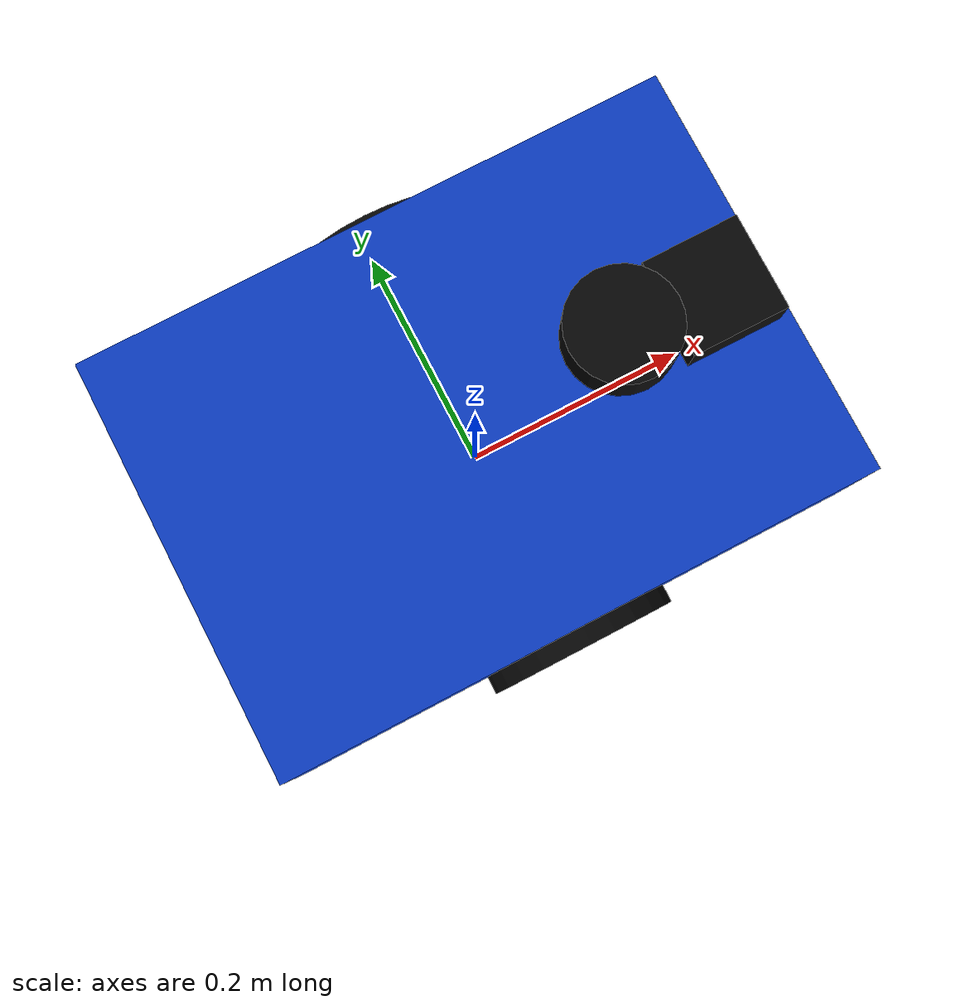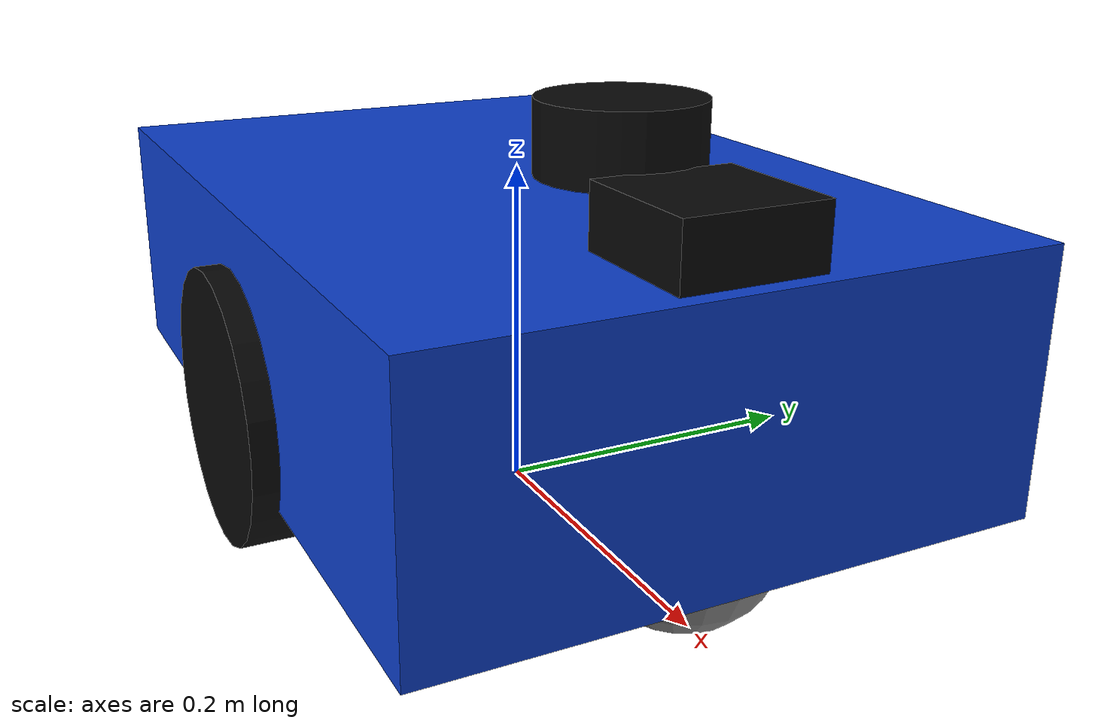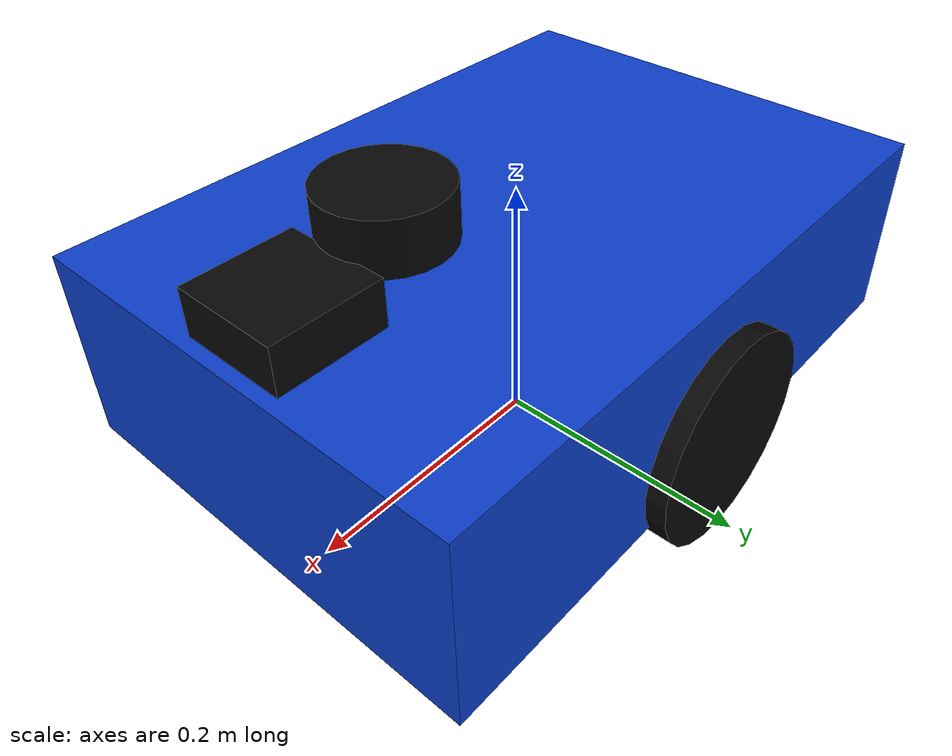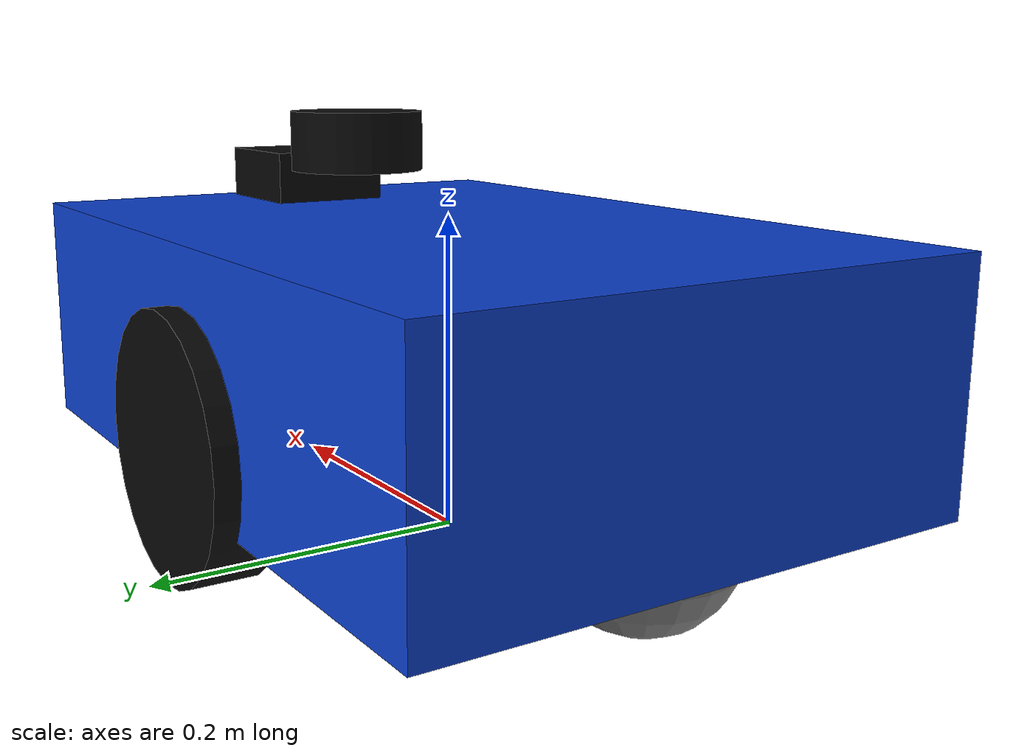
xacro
<?xml version="1.0"?>
<robot xmlns:xacro="http://www.ros.org/wiki/xacro" name="mobile_robot">

  <material name="blue"><color rgba="0.05 0.25 0.8 1.0"/></material>
  <material name="black"><color rgba="0.03 0.03 0.03 1.0"/></material>
  <material name="gray"><color rgba="0.45 0.45 0.45 1.0"/></material>

  <xacro:property name="body_length" value="0.50"/>
  <xacro:property name="body_width" value="0.35"/>
  <xacro:property name="body_height" value="0.15"/>
  <xacro:property name="wheel_radius" value="0.08"/>
  <xacro:property name="wheel_width" value="0.04"/>
  <xacro:property name="wheel_separation" value="0.34"/>

  <link name="base_link">
    <visual><origin xyz="0 0 0.12"/><geometry><box size="${body_length} ${body_width} ${body_height}"/></geometry><material name="blue"/></visual>
    <collision><origin xyz="0 0 0.12"/><geometry><box size="${body_length} ${body_width} ${body_height}"/></geometry></collision>
    <inertial><origin xyz="0 0 0.12"/><mass value="8.0"/><inertia ixx="0.20" ixy="0" ixz="0" iyy="0.40" iyz="0" izz="0.50"/></inertial>
  </link>

  <xacro:macro name="wheel" params="name x y">
    <link name="${name}">
      <visual><origin rpy="1.5708 0 0"/><geometry><cylinder radius="${wheel_radius}" length="${wheel_width}"/></geometry><material name="black"/></visual>
      <collision><origin rpy="1.5708 0 0"/><geometry><cylinder radius="${wheel_radius}" length="${wheel_width}"/></geometry></collision>
      <inertial><mass value="0.5"/><inertia ixx="0.002" ixy="0" ixz="0" iyy="0.002" iyz="0" izz="0.002"/></inertial>
    </link>
    <joint name="${name}_joint" type="continuous">
      <parent link="base_link"/><child link="${name}"/><origin xyz="${x} ${y} ${wheel_radius}" rpy="0 0 0"/><axis xyz="0 1 0"/>
    </joint>
  </xacro:macro>

  <xacro:wheel name="left_wheel" x="0" y="0.17"/>
  <xacro:wheel name="right_wheel" x="0" y="-0.17"/>

  <xacro:property name="caster_radius" value="0.055"/>
  <xacro:property name="caster_offset_x" value="0.19"/>

  <xacro:macro name="caster" params="name x">
    <link name="${name}">
      <visual><geometry><sphere radius="${caster_radius}"/></geometry><material name="gray"/></visual>
      <collision><geometry><sphere radius="${caster_radius}"/></geometry></collision>
      <inertial><mass value="0.2"/><inertia ixx="0.001" ixy="0" ixz="0" iyy="0.001" iyz="0" izz="0.001"/></inertial>
    </link>
    <joint name="${name}_joint" type="fixed"><parent link="base_link"/><child link="${name}"/><origin xyz="${x} 0 ${caster_radius}"/></joint>
    <gazebo reference="${name}">
      <mu1>0.0</mu1>
      <mu2>0.0</mu2>
    </gazebo>
  </xacro:macro>

  <xacro:caster name="rear_caster_link" x="${-caster_offset_x}"/>
  <xacro:caster name="front_caster_link" x="${caster_offset_x}"/>

  <link name="lidar_link">
    <visual><geometry><cylinder radius="0.045" length="0.04"/></geometry><material name="black"/></visual>
  </link>
  <joint name="lidar_joint" type="fixed"><parent link="base_link"/><child link="lidar_link"/><origin xyz="0.12 0 0.24"/></joint>

  <gazebo reference="lidar_link">
    <sensor name="lidar_sensor" type="gpu_lidar">
      <topic>/scan</topic>
      <gz_frame_id>lidar_link</gz_frame_id>
      <update_rate>10</update_rate>
      <lidar>
        <scan>
          <horizontal>
            <samples>360</samples>
            <resolution>1</resolution>
            <min_angle>-3.14159</min_angle>
            <max_angle>3.14159</max_angle>
          </horizontal>
        </scan>
        <range>
          <min>0.08</min>
          <max>10.0</max>
          <resolution>0.01</resolution>
        </range>
      </lidar>
      <visualize>true</visualize>
    </sensor>
  </gazebo>

  <link name="imu_link"/>
  <joint name="imu_joint" type="fixed"><parent link="base_link"/><child link="imu_link"/><origin xyz="0 0 0.21"/></joint>

  <link name="camera_link">
    <visual>
      <geometry><box size="0.08 0.08 0.06"/></geometry>
      <material name="black"/>
    </visual>
  </link>
  <joint name="camera_joint" type="fixed">
    <parent link="base_link"/>
    <child link="camera_link"/>
    <origin xyz="0.20 0 0.20" rpy="0 0 0"/>
  </joint>

  <gazebo reference="camera_link">
    <sensor name="camera_sensor" type="camera">
      <topic>/camera/image_raw</topic>
      <gz_frame_id>camera_link</gz_frame_id>
      <update_rate>10</update_rate>
      <camera>
        <camera_info_topic>/camera/camera_info</camera_info_topic>
        <horizontal_fov>1.047</horizontal_fov>
        <image>
          <width>320</width>
          <height>240</height>
          <format>R8G8B8</format>
        </image>
        <clip>
          <near>0.1</near>
          <far>30.0</far>
        </clip>
      </camera>
      <always_on>true</always_on>
      <visualize>true</visualize>
    </sensor>
  </gazebo>

  <gazebo reference="imu_link">
    <sensor name="imu_sensor" type="imu">
      <topic>/imu</topic>
      <gz_frame_id>imu_link</gz_frame_id>
      <update_rate>50</update_rate>
      <always_on>true</always_on>
      <visualize>false</visualize>
      <imu>
        <angular_velocity>
          <x><noise type="gaussian"><mean>0.0</mean><stddev>0.0002</stddev></noise></x>
          <y><noise type="gaussian"><mean>0.0</mean><stddev>0.0002</stddev></noise></y>
          <z><noise type="gaussian"><mean>0.0</mean><stddev>0.0002</stddev></noise></z>
        </angular_velocity>
        <linear_acceleration>
          <x><noise type="gaussian"><mean>0.0</mean><stddev>0.017</stddev></noise></x>
          <y><noise type="gaussian"><mean>0.0</mean><stddev>0.017</stddev></noise></y>
          <z><noise type="gaussian"><mean>0.0</mean><stddev>0.017</stddev></noise></z>
        </linear_acceleration>
      </imu>
    </sensor>
  </gazebo>

  <gazebo reference="base_link">
    <material>Gazebo/Blue</material>
  </gazebo>

  <gazebo>
    <plugin filename="gz-sim-diff-drive-system" name="gz::sim::systems::DiffDrive">
      <left_joint>left_wheel_joint</left_joint>
      <right_joint>right_wheel_joint</right_joint>
      <wheel_separation>${wheel_separation}</wheel_separation>
      <wheel_radius>${wheel_radius}</wheel_radius>
      <topic>/cmd_vel</topic>
      <odom_topic>/odom</odom_topic>
      <frame_id>odom</frame_id>
      <child_frame_id>base_link</child_frame_id>
    </plugin>
  </gazebo>

  <gazebo>
    <plugin filename="gz-sim-joint-state-publisher-system" name="gz::sim::systems::JointStatePublisher">
      <topic>/joint_states</topic>
      <joint_name>left_wheel_joint</joint_name>
      <joint_name>right_wheel_joint</joint_name>
    </plugin>
  </gazebo>
</robot>
